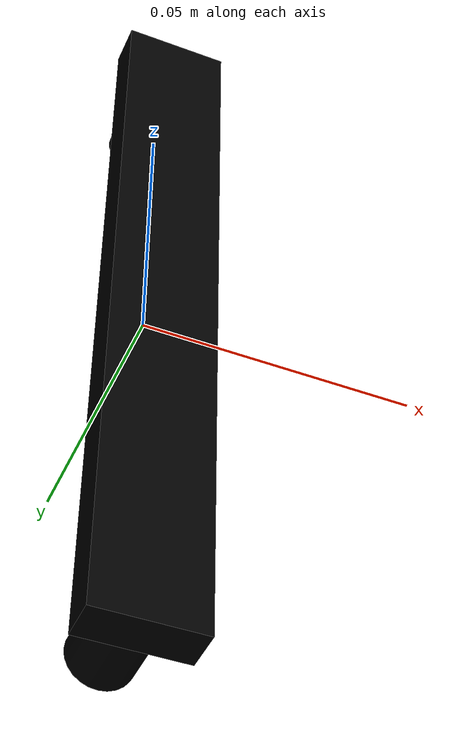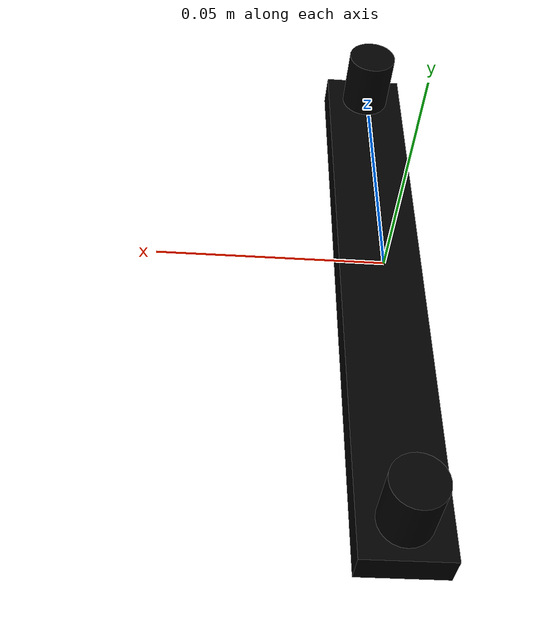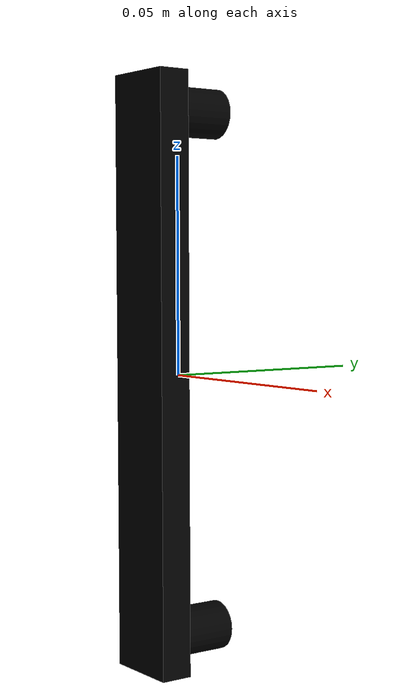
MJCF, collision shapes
<?xml version="1.0" ?>
<mujoco model="model">
    <compiler angle="radian"/>
    <asset>
        <mesh file="visuals/CabinetHandle038.obj" name="mesh"/>
        <texture file="visuals/T_BC001.png" name="tex" type="2d"/>
        <material name="mat" rgba="1 1 1 1.0" texture="tex" shininess="2" specular="2"/>
    </asset>
    <default>
        <default class="visual">
            <geom conaffinity="0" contype="0" group="1" type="mesh"/>
        </default>
        <default class="collision">
            <geom group="0" rgba="0 0 0 0"/>
        </default>
        <default class="spawn">
            <geom group="0" rgba="0 0 0 0" contype="0" conaffinity="0"/>
            <site group="0" rgba="0 0 0 0"/>
        </default>
    </default>
    <worldbody>
        <body>
            <body name="object">
                <geom mesh="mesh" type="mesh" solimp="0.998 0.998 0.001" solref="0.001 1" density="100" friction="0.95 0.3 0.1" class="visual" material="mat"/>
                <geom class="collision" type="box" pos="5.239645815890981e-06 -0.006948983296751976 0.00011264387285336852" size="0.009334716014564037 0.00367554253898561 0.06822262704372406" quat="1.0 0.0 0.0 0.0"/>
                <geom class="collision" type="cylinder" pos="4.1593371861381456e-05 0.0038107505533844233 0.06010641157627106" size="0.005676853936165571 0.007001516874879599" quat="0.7071067690849304 0.7071067690849304 0.0 0.0"/>
                <geom class="collision" type="cylinder" pos="4.1593371861381456e-05 0.003946599550545216 -0.060061752796173096" size="0.005676853936165571 0.007137365639209747" quat="0.7071067690849304 0.7071067690849304 0.0 0.0" name="handle_connector"/>
            </body>
        </body>
    </worldbody>
    <actuator/>
</mujoco>
